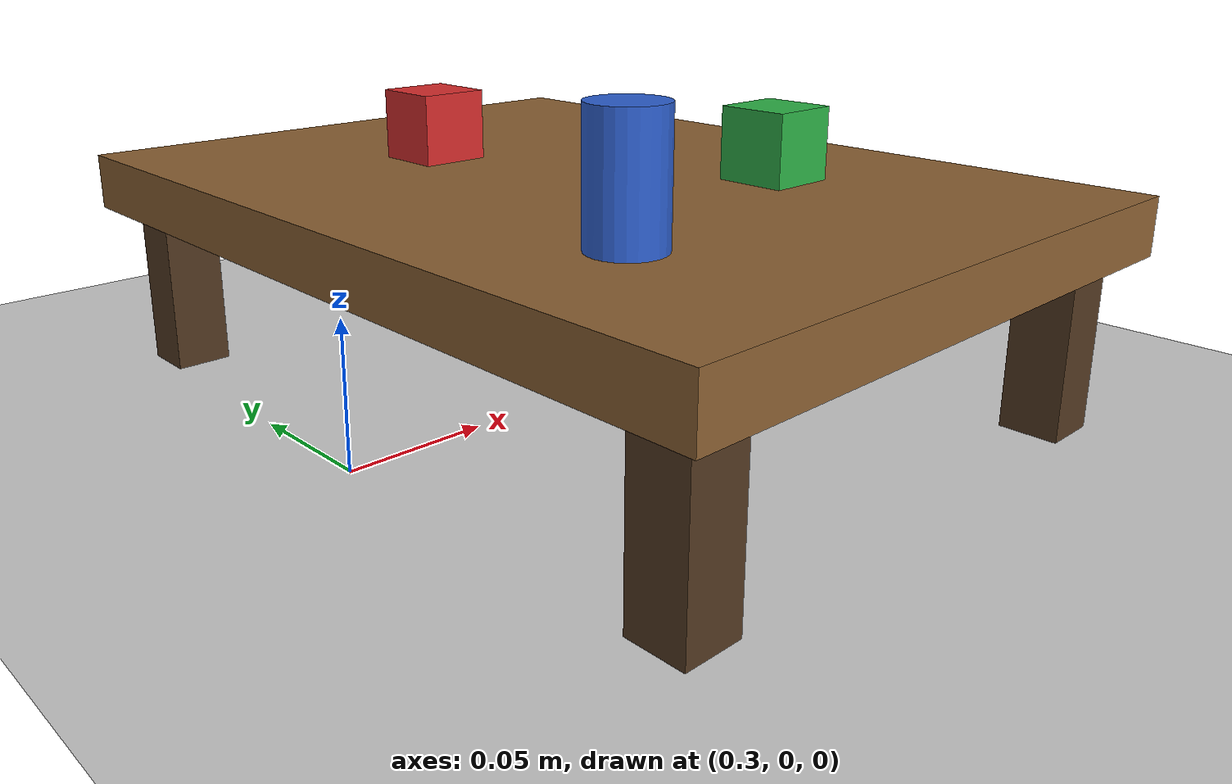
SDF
<?xml version="1.0" ?>
<sdf version="1.7">
  <world name="teleop_arm_world">
    <!-- Close orbit on the 0.5 m arm + table workspace (default camera is ~7 m out). -->
    <gui fullscreen="0">
      <camera name="gzclient_camera">
        <pose>0.70 -0.55 0.40 0 0.39 2.22</pose>
        <view_controller>orbit</view_controller>
        <projection_type>perspective</projection_type>
      </camera>
    </gui>
    <scene>
      <ambient>0.5 0.5 0.5 1</ambient>
      <background>0.72 0.76 0.82 1</background>
      <shadows>false</shadows>
    </scene>
    <include>
      <uri>model://ground_plane</uri>
    </include>
    <include>
      <uri>model://sun</uri>
    </include>
    <gravity>0 0 -9.81</gravity>
    <physics type="ode">
      <max_step_size>0.001</max_step_size>
      <real_time_factor>1</real_time_factor>
      <real_time_update_rate>1000</real_time_update_rate>
    </physics>

    <!-- Table under the tool, not the elbow: top 0.22 x 0.30 m, top face z=0.08 m, x=0.29..0.51. -->
    <model name="table">
      <static>true</static>
      <pose>0.40 0 0 0 0 0</pose>
      <link name="top">
        <pose>0 0 0.07 0 0 0</pose>
        <collision name="collision">
          <geometry><box><size>0.22 0.30 0.02</size></box></geometry>
        </collision>
        <visual name="visual">
          <geometry><box><size>0.22 0.30 0.02</size></box></geometry>
          <material>
            <ambient>0.45 0.32 0.18 1</ambient>
            <diffuse>0.55 0.38 0.20 1</diffuse>
          </material>
        </visual>
      </link>
      <link name="leg_fl">
        <pose>0.09 0.13 0.03 0 0 0</pose>
        <collision name="collision">
          <geometry><box><size>0.02 0.02 0.06</size></box></geometry>
        </collision>
        <visual name="visual">
          <geometry><box><size>0.02 0.02 0.06</size></box></geometry>
          <material>
            <ambient>0.28 0.20 0.12 1</ambient>
            <diffuse>0.32 0.22 0.13 1</diffuse>
          </material>
        </visual>
      </link>
      <link name="leg_fr">
        <pose>0.09 -0.13 0.03 0 0 0</pose>
        <collision name="collision">
          <geometry><box><size>0.02 0.02 0.06</size></box></geometry>
        </collision>
        <visual name="visual">
          <geometry><box><size>0.02 0.02 0.06</size></box></geometry>
          <material>
            <ambient>0.28 0.20 0.12 1</ambient>
            <diffuse>0.32 0.22 0.13 1</diffuse>
          </material>
        </visual>
      </link>
      <link name="leg_rl">
        <pose>-0.09 0.13 0.03 0 0 0</pose>
        <collision name="collision">
          <geometry><box><size>0.02 0.02 0.06</size></box></geometry>
        </collision>
        <visual name="visual">
          <geometry><box><size>0.02 0.02 0.06</size></box></geometry>
          <material>
            <ambient>0.28 0.20 0.12 1</ambient>
            <diffuse>0.32 0.22 0.13 1</diffuse>
          </material>
        </visual>
      </link>
      <link name="leg_rr">
        <pose>-0.09 -0.13 0.03 0 0 0</pose>
        <collision name="collision">
          <geometry><box><size>0.02 0.02 0.06</size></box></geometry>
        </collision>
        <visual name="visual">
          <geometry><box><size>0.02 0.02 0.06</size></box></geometry>
          <material>
            <ambient>0.28 0.20 0.12 1</ambient>
            <diffuse>0.32 0.22 0.13 1</diffuse>
          </material>
        </visual>
      </link>
    </model>

    <!-- Pick objects on the table, ~2.5 cm, static so they stay put for teleop. -->
    <model name="block_red">
      <static>true</static>
      <pose>0.38 0.06 0.0925 0 0 0</pose>
      <link name="link">
        <collision name="collision">
          <geometry><box><size>0.025 0.025 0.025</size></box></geometry>
        </collision>
        <visual name="visual">
          <geometry><box><size>0.025 0.025 0.025</size></box></geometry>
          <material>
            <ambient>0.7 0.12 0.12 1</ambient>
            <diffuse>0.85 0.18 0.18 1</diffuse>
          </material>
        </visual>
      </link>
    </model>
    <model name="block_green">
      <static>true</static>
      <pose>0.44 -0.05 0.0925 0 0 0</pose>
      <link name="link">
        <collision name="collision">
          <geometry><box><size>0.025 0.025 0.025</size></box></geometry>
        </collision>
        <visual name="visual">
          <geometry><box><size>0.025 0.025 0.025</size></box></geometry>
          <material>
            <ambient>0.12 0.55 0.22 1</ambient>
            <diffuse>0.18 0.7 0.28 1</diffuse>
          </material>
        </visual>
      </link>
    </model>
    <model name="cylinder_blue">
      <static>true</static>
      <pose>0.34 -0.08 0.10 0 0 0</pose>
      <link name="link">
        <collision name="collision">
          <geometry><cylinder><radius>0.012</radius><length>0.04</length></cylinder></geometry>
        </collision>
        <visual name="visual">
          <geometry><cylinder><radius>0.012</radius><length>0.04</length></cylinder></geometry>
          <material>
            <ambient>0.12 0.28 0.65 1</ambient>
            <diffuse>0.18 0.38 0.82 1</diffuse>
          </material>
        </visual>
      </link>
    </model>
  </world>
</sdf>
